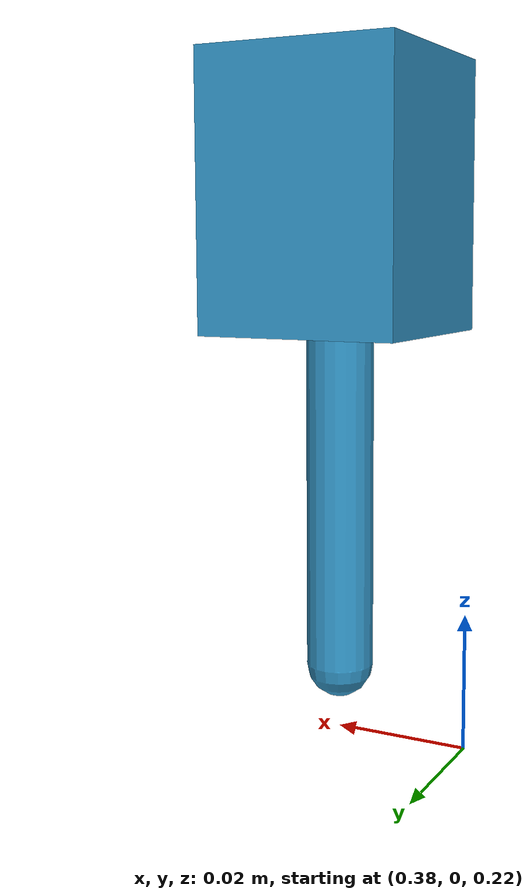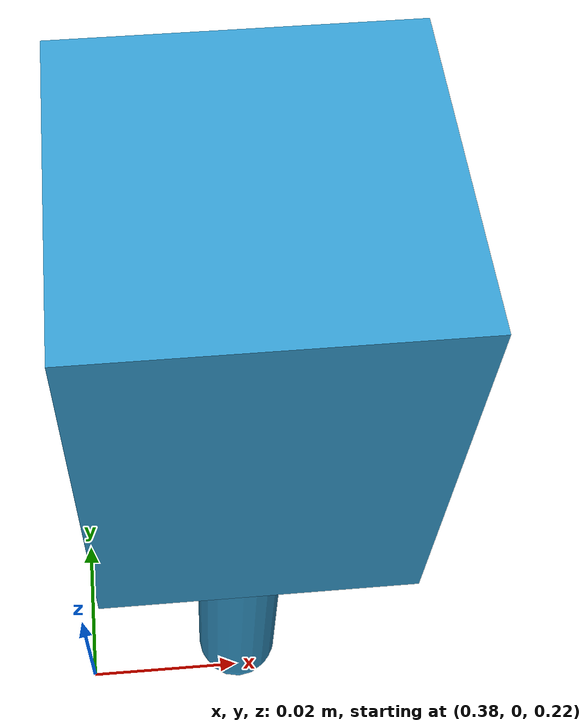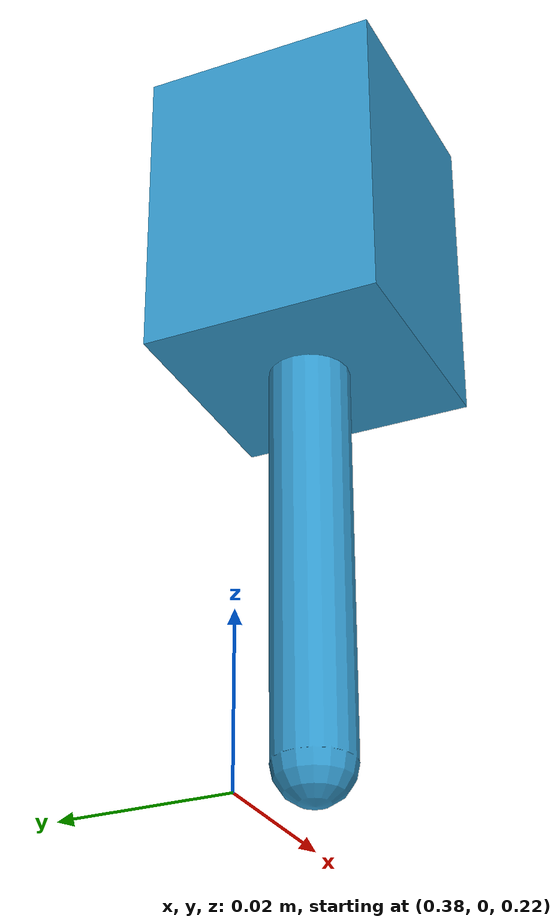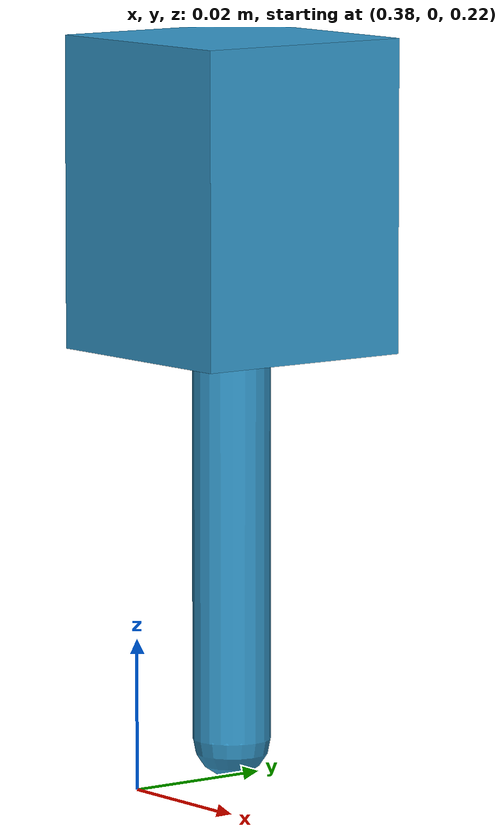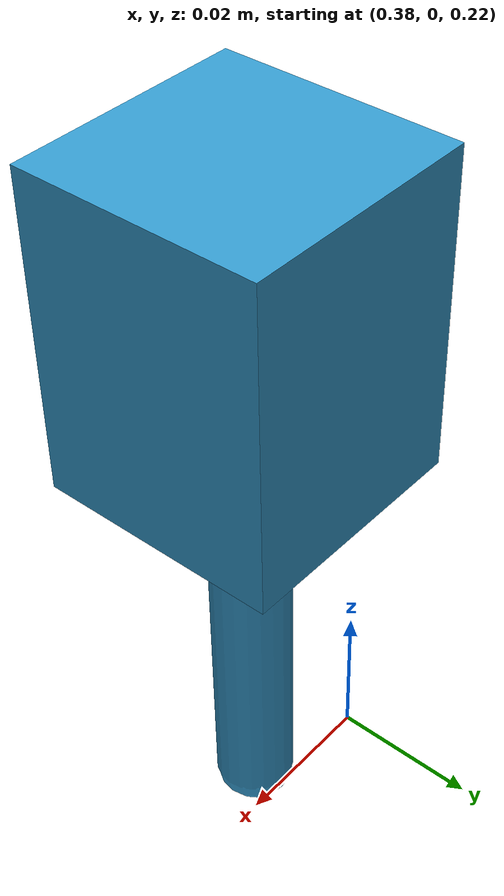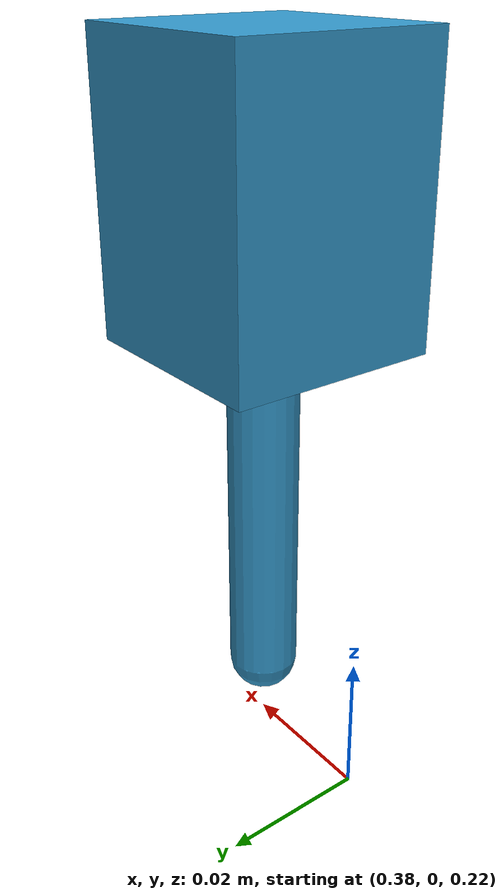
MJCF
<?xml version="1.0"?>
<mujoco model="peg">
  <worldbody>
    <body name="peg" pos="0.4 0 0.3">
      <freejoint name="peg_joint"/>
      <!-- Base cube (gripped by gripper) -->
      <geom type="box" name="peg_base" size="0.015 0.015 0.02" mass="0.007" rgba="0.2 0.6 0.8 1.0" condim="4" friction="3 0.1 0.01" contype="1" conaffinity="1" solref="0.01 1" solimp="0.95 0.99 0.001 0.5 2"/>
      <!-- Capsule protrusion extending downward for insertion (rounded ends for smoother insertion) -->
      <geom type="capsule" name="peg_cylinder" size="0.005 0.025" pos="0 0 -0.045" mass="0.003" rgba="0.2 0.6 0.8 1.0" condim="4" friction="3 0.1 0.01" contype="1" conaffinity="1" solref="0.01 1" solimp="0.95 0.99 0.001 0.5 2"/>
      <!-- Sites for observations — invisible, visualised via viser debug_vis -->
      <site name="object_site"    pos="0 0 0"     size="0.0001" rgba="0 0 0 0" group="4"/>
      <site name="cylinder_start" pos="0 0 -0.02"  size="0.0001" rgba="0 0 0 0" group="4"/>
      <site name="cylinder_center" pos="0 0 -0.045" size="0.0001" rgba="0 0 0 0" group="4"/>
      <site name="cylinder_end"   pos="0 0 -0.07"  size="0.0001" rgba="0 0 0 0" group="4"/>
    </body>
  </worldbody>
</mujoco>
